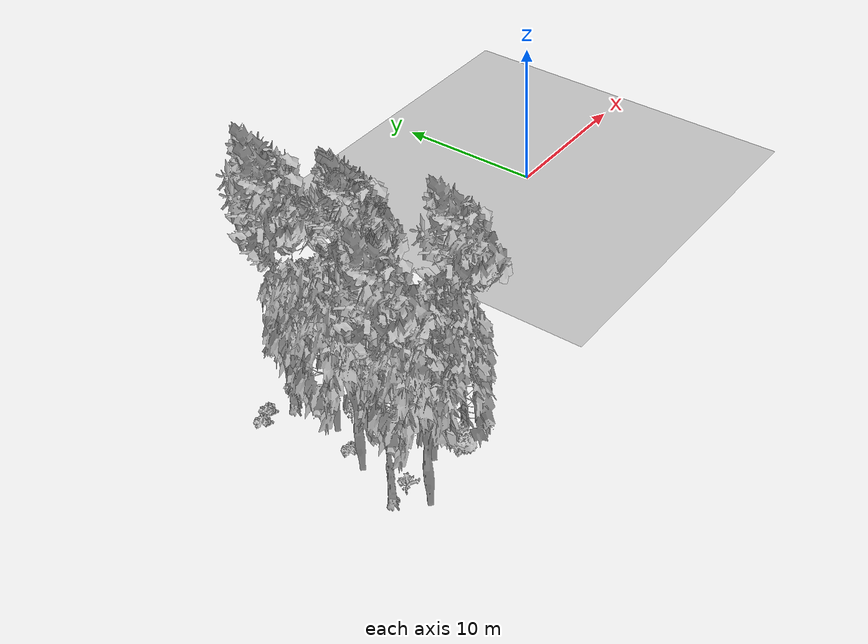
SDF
<sdf version="1.7">
 <world name="default">
  <model name="ground_plane">
   <static>1</static>
   <link name="link">
    <collision name="collision">
     <pose>-50 0 0 0 -0 0</pose>
     <geometry><plane><normal>0 0 1</normal><size>80 80</size></plane></geometry>
     <surface><contact><ode><min_depth>0.01</min_depth><max_vel>0</max_vel></ode></contact></surface>
    </collision>
    <visual name="grass">
     <cast_shadows>0</cast_shadows>
     <geometry>
      <mesh>
       <scale>0.46714285714285714 0.46714285714285714 0.1</scale>
       <uri>file://grass_plane/meshes/grass_plane.dae</uri>
      </mesh>
     </geometry>
    </visual>
   </link>
  </model>
  <model name="Tree 79">
   <static>1</static>
   <pose>-24.705833264431114 -0.5396222141229927 0 1.57079 -0 0</pose>
   <link name="link">
    <collision name="collision">
     <geometry><mesh><scale>3.5 5 3.5</scale><uri>model://tree_9/meshes/tree_9.obj</uri></mesh></geometry>
    </collision>
    <visual name="visual">
     <geometry><mesh><scale>3.5 5 3.5</scale><uri>model://tree_9/meshes/tree_9.obj</uri></mesh></geometry>
    </visual>
   </link>
  </model>
  <model name="Tree 117">
   <static>1</static>
   <pose>-26.113657004784336 -5.242905428460716 0 1.57079 -0 0</pose>
   <link name="link">
    <collision name="collision">
     <geometry><mesh><scale>3.5 5 3.5</scale><uri>model://tree_2/meshes/tree_2.obj</uri></mesh></geometry>
    </collision>
    <visual name="visual">
     <geometry><mesh><scale>3.5 5 3.5</scale><uri>model://tree_2/meshes/tree_2.obj</uri></mesh></geometry>
    </visual>
   </link>
  </model>
  <model name="Tree 199">
   <static>1</static>
   <pose>-27.595443418349653 -8.271637694936935 0 1.57079 -0 0</pose>
   <link name="link">
    <collision name="collision">
     <geometry><mesh><scale>3.5 5 3.5</scale><uri>model://tree_2/meshes/tree_2.obj</uri></mesh></geometry>
    </collision>
    <visual name="visual">
     <geometry><mesh><scale>3.5 5 3.5</scale><uri>model://tree_2/meshes/tree_2.obj</uri></mesh></geometry>
    </visual>
   </link>
  </model>
  <model name="Tree 220">
   <static>1</static>
   <pose>-23.9087403046508 -5.61572339511234 0 1.57079 -0 0</pose>
   <link name="link">
    <collision name="collision">
     <geometry><mesh><scale>3.5 5 3.5</scale><uri>model://tree_9/meshes/tree_9.obj</uri></mesh></geometry>
    </collision>
    <visual name="visual">
     <geometry><mesh><scale>3.5 5 3.5</scale><uri>model://tree_9/meshes/tree_9.obj</uri></mesh></geometry>
    </visual>
   </link>
  </model>
  <model name="Tree 222">
   <static>1</static>
   <pose>-24.85991285075187 -10.981698603211552 0 1.57079 -0 0</pose>
   <link name="link">
    <collision name="collision">
     <geometry><mesh><scale>3.5 5 3.5</scale><uri>model://tree_2/meshes/tree_2.obj</uri></mesh></geometry>
    </collision>
    <visual name="visual">
     <geometry><mesh><scale>3.5 5 3.5</scale><uri>model://tree_2/meshes/tree_2.obj</uri></mesh></geometry>
    </visual>
   </link>
  </model>
  <model name="Tree 424">
   <static>1</static>
   <pose>-24.12009452484469 -5.7232357709034005 0 1.57079 -0 0</pose>
   <link name="link">
    <collision name="collision">
     <geometry><mesh><scale>3.5 5 3.5</scale><uri>model://tree_9/meshes/tree_9.obj</uri></mesh></geometry>
    </collision>
    <visual name="visual">
     <geometry><mesh><scale>3.5 5 3.5</scale><uri>model://tree_9/meshes/tree_9.obj</uri></mesh></geometry>
    </visual>
   </link>
  </model>
  <model name="Tree 485">
   <static>1</static>
   <pose>-25.8609637162845 -1.887774723254232 0 1.57079 -0 0</pose>
   <link name="link">
    <collision name="collision">
     <geometry><mesh><scale>3.5 5 3.5</scale><uri>model://tree_9/meshes/tree_9.obj</uri></mesh></geometry>
    </collision>
    <visual name="visual">
     <geometry><mesh><scale>3.5 5 3.5</scale><uri>model://tree_9/meshes/tree_9.obj</uri></mesh></geometry>
    </visual>
   </link>
  </model>
  <model name="Tree 570">
   <static>1</static>
   <pose>-24.15889087834052 -6.0554822670628 0 1.57079 -0 0</pose>
   <link name="link">
    <collision name="collision">
     <geometry><mesh><scale>3.5 5 3.5</scale><uri>model://tree_9/meshes/tree_9.obj</uri></mesh></geometry>
    </collision>
    <visual name="visual">
     <geometry><mesh><scale>3.5 5 3.5</scale><uri>model://tree_9/meshes/tree_9.obj</uri></mesh></geometry>
    </visual>
   </link>
  </model>
  <model name="Tree 582">
   <static>1</static>
   <pose>-27.521429837267057 -12.800735028014572 0 1.57079 -0 0</pose>
   <link name="link">
    <collision name="collision">
     <geometry><mesh><scale>3.5 5 3.5</scale><uri>model://tree_2/meshes/tree_2.obj</uri></mesh></geometry>
    </collision>
    <visual name="visual">
     <geometry><mesh><scale>3.5 5 3.5</scale><uri>model://tree_2/meshes/tree_2.obj</uri></mesh></geometry>
    </visual>
   </link>
  </model>
  <model name="Tree 588">
   <static>1</static>
   <pose>-22.76571815951282 -11.586424580850831 0 1.57079 -0 0</pose>
   <link name="link">
    <collision name="collision">
     <geometry><mesh><scale>3.5 5 3.5</scale><uri>model://tree_9/meshes/tree_9.obj</uri></mesh></geometry>
    </collision>
    <visual name="visual">
     <geometry><mesh><scale>3.5 5 3.5</scale><uri>model://tree_9/meshes/tree_9.obj</uri></mesh></geometry>
    </visual>
   </link>
  </model>
  <model name="Tree 635">
   <static>1</static>
   <pose>-28.269293813983126 -10.913991944720493 0 1.57079 -0 0</pose>
   <link name="link">
    <collision name="collision">
     <geometry><mesh><scale>3.5 5 3.5</scale><uri>model://tree_9/meshes/tree_9.obj</uri></mesh></geometry>
    </collision>
    <visual name="visual">
     <geometry><mesh><scale>3.5 5 3.5</scale><uri>model://tree_9/meshes/tree_9.obj</uri></mesh></geometry>
    </visual>
   </link>
  </model>
  <model name="Bush 62">
   <static>1</static>
   <pose>-27.99612636388482 -1.4829083646003838 0 1.57079 -0 0</pose>
   <link name="link">
    <collision name="collision">
     <geometry><mesh><scale>2 2 2</scale><uri>model://bush_2/meshes/bush_2.obj</uri></mesh></geometry>
     <surface><contact><collide_without_contact>false</collide_without_contact></contact></surface>
    </collision>
    <visual name="visual">
     <geometry><mesh><scale>2 2 2</scale><uri>model://bush_2/meshes/bush_2.obj</uri></mesh></geometry>
    </visual>
   </link>
  </model>
  <model name="Bush 70">
   <static>1</static>
   <pose>-25.151759240678473 -2.1357434190700175 0 1.57079 -0 0</pose>
   <link name="link">
    <collision name="collision">
     <geometry><mesh><scale>2 2 2</scale><uri>model://bush_2/meshes/bush_2.obj</uri></mesh></geometry>
     <surface><contact><collide_without_contact>false</collide_without_contact></contact></surface>
    </collision>
    <visual name="visual">
     <geometry><mesh><scale>2 2 2</scale><uri>model://bush_2/meshes/bush_2.obj</uri></mesh></geometry>
    </visual>
   </link>
  </model>
  <model name="Bush 86">
   <static>1</static>
   <pose>-23.555730437382085 -12.136164149472776 0 1.57079 -0 0</pose>
   <link name="link">
    <collision name="collision">
     <geometry><mesh><scale>2 2 2</scale><uri>model://bush_1/meshes/bush_1.obj</uri></mesh></geometry>
     <surface><contact><collide_without_contact>false</collide_without_contact></contact></surface>
    </collision>
    <visual name="visual">
     <geometry><mesh><scale>2 2 2</scale><uri>model://bush_1/meshes/bush_1.obj</uri></mesh></geometry>
    </visual>
   </link>
  </model>
  <model name="Bush 105">
   <static>1</static>
   <pose>-26.899662230403873 -6.8938593100800105 0 1.57079 -0 0</pose>
   <link name="link">
    <collision name="collision">
     <geometry><mesh><scale>2 2 2</scale><uri>model://bush_2/meshes/bush_2.obj</uri></mesh></geometry>
     <surface><contact><collide_without_contact>false</collide_without_contact></contact></surface>
    </collision>
    <visual name="visual">
     <geometry><mesh><scale>2 2 2</scale><uri>model://bush_2/meshes/bush_2.obj</uri></mesh></geometry>
    </visual>
   </link>
  </model>
  <model name="Bush 127">
   <static>1</static>
   <pose>-27.186552409562253 -1.1100466779554523 0 1.57079 -0 0</pose>
   <link name="link">
    <collision name="collision">
     <geometry><mesh><scale>2 2 2</scale><uri>model://bush_2/meshes/bush_2.obj</uri></mesh></geometry>
     <surface><contact><collide_without_contact>false</collide_without_contact></contact></surface>
    </collision>
    <visual name="visual">
     <geometry><mesh><scale>2 2 2</scale><uri>model://bush_2/meshes/bush_2.obj</uri></mesh></geometry>
    </visual>
   </link>
  </model>
  <model name="Bush 151">
   <static>1</static>
   <pose>-23.153600528813655 -11.916742236118736 0 1.57079 -0 0</pose>
   <link name="link">
    <collision name="collision">
     <geometry><mesh><scale>2 2 2</scale><uri>model://bush_2/meshes/bush_2.obj</uri></mesh></geometry>
     <surface><contact><collide_without_contact>false</collide_without_contact></contact></surface>
    </collision>
    <visual name="visual">
     <geometry><mesh><scale>2 2 2</scale><uri>model://bush_2/meshes/bush_2.obj</uri></mesh></geometry>
    </visual>
   </link>
  </model>
  <model name="Bush 301">
   <static>1</static>
   <pose>-25.15503387350803 -5.555969426397638 0 1.57079 -0 0</pose>
   <link name="link">
    <collision name="collision">
     <geometry><mesh><scale>2 2 2</scale><uri>model://bush_5/meshes/bush_5.obj</uri></mesh></geometry>
     <surface><contact><collide_without_contact>false</collide_without_contact></contact></surface>
    </collision>
    <visual name="visual">
     <geometry><mesh><scale>2 2 2</scale><uri>model://bush_5/meshes/bush_5.obj</uri></mesh></geometry>
    </visual>
   </link>
  </model>
  <model name="Bush 306">
   <static>1</static>
   <pose>-23.955733944230218 -7.339488744420194 0 1.57079 -0 0</pose>
   <link name="link">
    <collision name="collision">
     <geometry><mesh><scale>2 2 2</scale><uri>model://bush_2/meshes/bush_2.obj</uri></mesh></geometry>
     <surface><contact><collide_without_contact>false</collide_without_contact></contact></surface>
    </collision>
    <visual name="visual">
     <geometry><mesh><scale>2 2 2</scale><uri>model://bush_2/meshes/bush_2.obj</uri></mesh></geometry>
    </visual>
   </link>
  </model>
  <model name="Bush 371">
   <static>1</static>
   <pose>-27.644607050843007 -11.38019456650759 0 1.57079 -0 0</pose>
   <link name="link">
    <collision name="collision">
     <geometry><mesh><scale>2 2 2</scale><uri>model://bush_5/meshes/bush_5.obj</uri></mesh></geometry>
     <surface><contact><collide_without_contact>false</collide_without_contact></contact></surface>
    </collision>
    <visual name="visual">
     <geometry><mesh><scale>2 2 2</scale><uri>model://bush_5/meshes/bush_5.obj</uri></mesh></geometry>
    </visual>
   </link>
  </model>
  <model name="Bush 392">
   <static>1</static>
   <pose>-24.131520155138233 -4.910699817944092 0 1.57079 -0 0</pose>
   <link name="link">
    <collision name="collision">
     <geometry><mesh><scale>2 2 2</scale><uri>model://bush_2/meshes/bush_2.obj</uri></mesh></geometry>
     <surface><contact><collide_without_contact>false</collide_without_contact></contact></surface>
    </collision>
    <visual name="visual">
     <geometry><mesh><scale>2 2 2</scale><uri>model://bush_2/meshes/bush_2.obj</uri></mesh></geometry>
    </visual>
   </link>
  </model>
  <model name="Bush 603">
   <static>1</static>
   <pose>-23.383915037265744 -11.901552252743208 0 1.57079 -0 0</pose>
   <link name="link">
    <collision name="collision">
     <geometry><mesh><scale>2 2 2</scale><uri>model://bush_2/meshes/bush_2.obj</uri></mesh></geometry>
     <surface><contact><collide_without_contact>false</collide_without_contact></contact></surface>
    </collision>
    <visual name="visual">
     <geometry><mesh><scale>2 2 2</scale><uri>model://bush_2/meshes/bush_2.obj</uri></mesh></geometry>
    </visual>
   </link>
  </model>
  <model name="Bush 606">
   <static>1</static>
   <pose>-25.139929655291933 -1.9589791374206698 0 1.57079 -0 0</pose>
   <link name="link">
    <collision name="collision">
     <geometry><mesh><scale>2 2 2</scale><uri>model://bush_1/meshes/bush_1.obj</uri></mesh></geometry>
     <surface><contact><collide_without_contact>false</collide_without_contact></contact></surface>
    </collision>
    <visual name="visual">
     <geometry><mesh><scale>2 2 2</scale><uri>model://bush_1/meshes/bush_1.obj</uri></mesh></geometry>
    </visual>
   </link>
  </model>
 </world>
</sdf>
